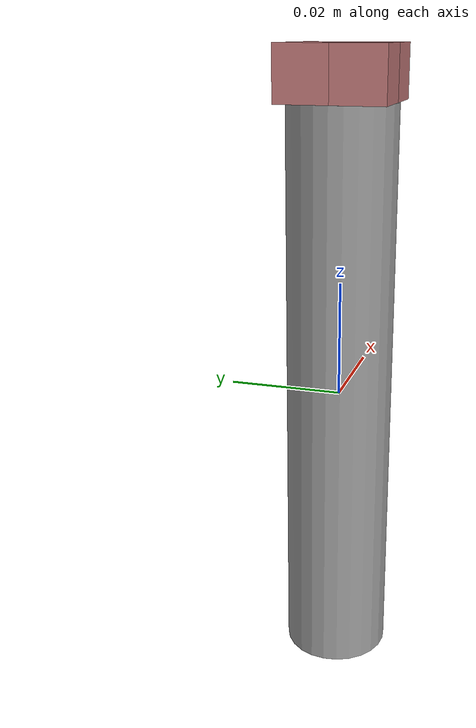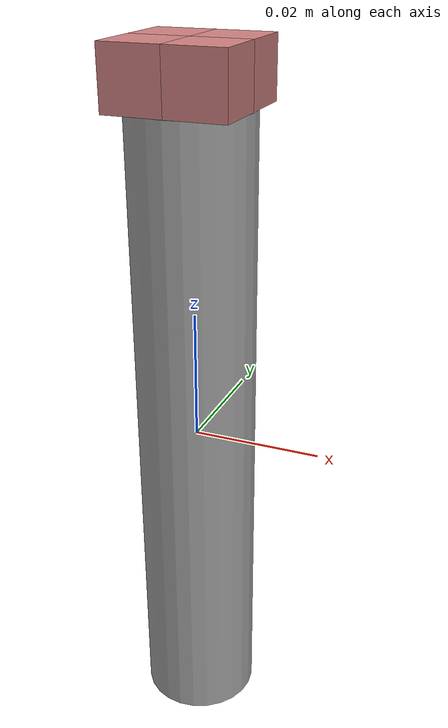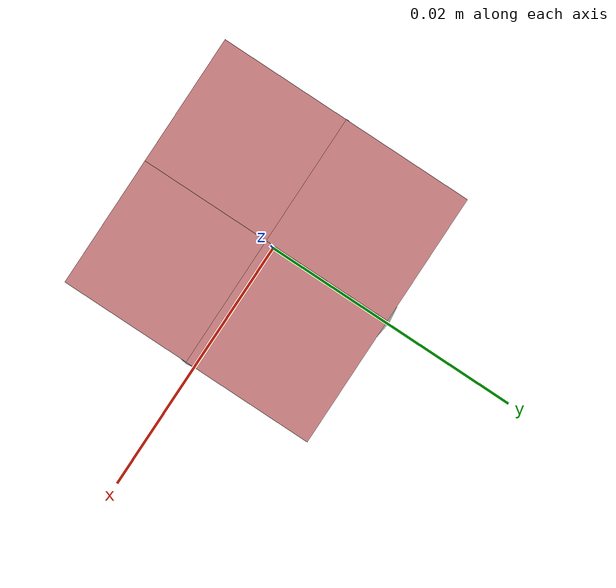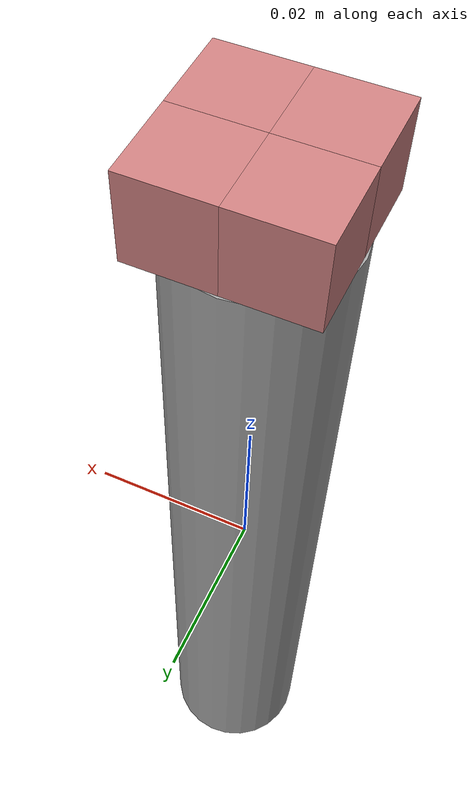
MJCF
<mujoco model="sucker">
  <option integrator="implicitfast"/>
  <default>
    <default class="active_adhesion">
      <geom rgba=".8 .5 .5 1" margin=".00045" gap=".00045"/>
    </default>
  </default>
  <worldbody>
    <geom type="cylinder" size="0.00925 0.05" rgba="0.647 0.647 0.647 1"/>
    <body name="vaccum_gripper" pos="0 0 .05" childclass="active_adhesion">
      <site name="vaccum_site" group="3" pos="0 0 0.009"/>
      <geom type="box" size="0.0045 0.0045 0.0045" pos="-0.0045 -0.0045 0.0045" />
      <geom type="box" size="0.0045 0.0045 0.0045" pos="0.0045 -0.0045 0.0045" />
      <geom type="box" size="0.0045 0.0045 0.0045" pos="0.0045 0.0045 0.0045" />
      <geom type="box" size="0.0045 0.0045 0.0045" pos="-0.0045 0.0045 0.0045"/>
    </body>
  </worldbody>
  <actuator>
    <adhesion name="adhere_vaccum" body="vaccum_gripper" ctrlrange="0 1" gain="2"/>
  </actuator>
</mujoco>
